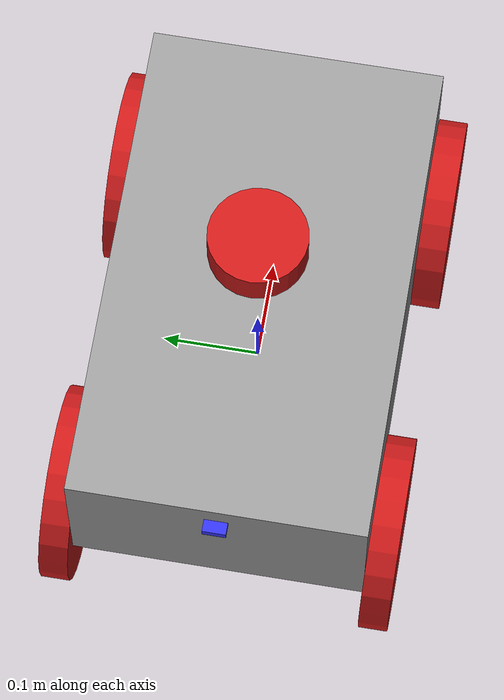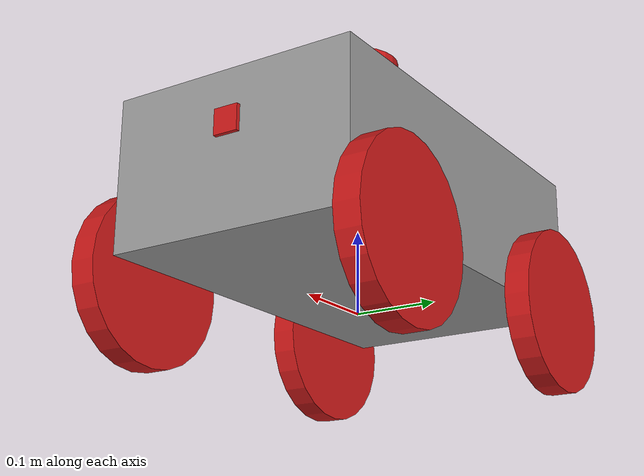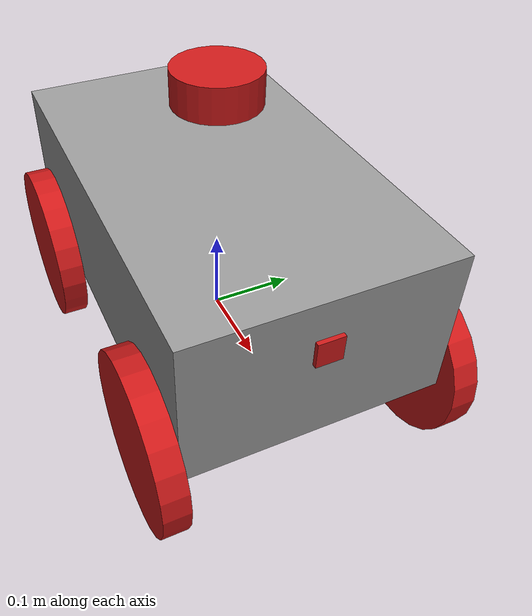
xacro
<robot xmlns:xacro="http://www.ros.org/wiki/xacro"  name="robot">

    <xacro:include filename="rover_core.xacro" />

    <xacro:include filename="ros2_control.xacro" />

    <xacro:include filename="depth_camera.xacro" />

    <xacro:include filename="lidar_2d.xacro" />

    <xacro:include filename="back_camera.xacro" />

    <xacro:include filename="imu.xacro"/>

    <xacro:imu_sensor parent_link="base_link"/>

</robot>

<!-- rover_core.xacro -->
<robot xmlns:xacro="http://www.ros.org/wiki/xacro" name="basic_rover">

  <xacro:include filename="inertial_macros.xacro"/>

  <!-- Materials -->
  <material name="gray"><color rgba="0.6 0.6 0.6 1.0"/></material>
  <material name="black"><color rgba="0.05 0.05 0.05 1.0"/></material>
  <material name="red"><color rgba="0.8 0.1 0.1 1.0"/></material>
  <material name="blue"><color rgba="0.2 0.2 1.0 1.0"/></material>

  <!-- Dimensions (easy to tweak) -->
  <xacro:property name="base_x" value="0.50"/>
  <xacro:property name="base_y" value="0.30"/>
  <xacro:property name="base_z" value="0.18"/>
  <xacro:property name="base_z_origin" value="0.12"/>

  <xacro:property name="wheel_r" value="0.10"/>
  <xacro:property name="wheel_w" value="0.03"/>

  <!-- Wheel placement (relative to base_link origin) -->
  <xacro:property name="wheel_x_front" value="0.18"/>
  <xacro:property name="wheel_x_rear"  value="-0.18"/>
  <xacro:property name="wheel_y" value="${base_y/2 + wheel_w/2}"/>

  <!-- Put wheel centers slightly below base collision bottom (base bottom is z=0.0) -->
  <xacro:property name="wheel_z" value="0.02"/>

  <!-- BASE LINK (chassis) -->
  <link name="base_link">
    <visual>
      <origin xyz="0 0 ${base_z_origin}" rpy="0 0 0"/>
      <geometry>
        <box size="${base_x} ${base_y} ${base_z}"/>
      </geometry>
      <material name="gray"/>
    </visual>

    <collision>
      <origin xyz="0 0 ${base_z_origin}" rpy="0 0 0"/>
      <geometry>
        <box size="${base_x} ${base_y} ${base_z}"/>
      </geometry>
    </collision>

    <!-- Use your macro for inertia -->
    <xacro:inertial_box mass="10.0" x="${base_x}" y="${base_y}" z="${base_z}">
      <origin xyz="0 0 ${base_z/2}" rpy="0 0 0"/>
    </xacro:inertial_box>
  </link>

  <gazebo reference="base_link">
    <material>Gazebo/Grey</material>
  </gazebo>

    <!-- BASE FOOTPRINT (ground-projected base frame for SLAM/Nav2) -->
  <joint name="base_footprint_joint" type="fixed">
    <parent link="base_link"/>
    <child link="base_footprint"/>
    <origin xyz="0 0 0" rpy="0 0 0 "/>
  </joint>

  <link name="base_footprint">
  </link>

  <!-- Helper macro for a wheel -->
  <xacro:macro name="wheel_link" params="name">
    <link name="${name}">
      <visual>
        <!-- Rotate cylinder so it spins about Y (axle along Y) -->
        <origin xyz="0 0 0" rpy="${pi/2} 0 0"/>
        <geometry>
          <cylinder radius="${wheel_r}" length="${wheel_w}"/>
        </geometry>
        <material name="red"/>
      </visual>

      <collision>
        <origin xyz="0 0 0" rpy="${pi/2} 0 0"/>
        <geometry>
          <cylinder radius="${wheel_r}" length="${wheel_w}"/>
        </geometry>
      </collision>

      <xacro:inertial_cylinder mass="0.5" length="${wheel_w}" radius="${wheel_r}">
        <origin xyz="0 0 0" rpy="0 0 0"/>
      </xacro:inertial_cylinder>
    </link>

    <gazebo reference="${name}">
      <material>Gazebo/Red</material>
    </gazebo>
  </xacro:macro>

  <!-- Create 4 wheels -->
  <xacro:wheel_link name="front_left_wheel"/>
  <xacro:wheel_link name="front_right_wheel"/>
  <xacro:wheel_link name="rear_left_wheel"/>
  <xacro:wheel_link name="rear_right_wheel"/>

  <!-- Joints -->
  <!-- NOTE: Axis set to Y so wheel rotates correctly with the visual rotation above -->
  <joint name="front_left_wheel_joint" type="continuous">
    <parent link="base_link"/>
    <child link="front_left_wheel"/>
    <origin xyz="${wheel_x_front} ${wheel_y} ${wheel_z}" rpy="0 0 0"/>
    <axis xyz="0 1 0"/>
  </joint>

  <joint name="front_right_wheel_joint" type="continuous">
    <parent link="base_link"/>
    <child link="front_right_wheel"/>
    <origin xyz="${wheel_x_front} -${wheel_y} ${wheel_z}" rpy="0 0 0"/>
    <axis xyz="0 1 0"/>
  </joint>

  <joint name="rear_left_wheel_joint" type="continuous">
    <parent link="base_link"/>
    <child link="rear_left_wheel"/>
    <origin xyz="${wheel_x_rear} ${wheel_y} ${wheel_z}" rpy="0 0 0"/>
    <axis xyz="0 1 0"/>
  </joint>

  <joint name="rear_right_wheel_joint" type="continuous">
    <parent link="base_link"/>
    <child link="rear_right_wheel"/>
    <origin xyz="${wheel_x_rear} -${wheel_y} ${wheel_z}" rpy="0 0 0"/>
    <axis xyz="0 1 0"/>
  </joint>

  <!-- Make REAR wheels (passive) very low friction so they don't fight the driven front wheels -->
  <gazebo reference="rear_left_wheel">
    <mu1 value="0.0001"/>
    <mu2 value="0.0001"/>
    <slip1 value="1.0"/>
    <slip2 value="1.0"/>
  </gazebo>

  <gazebo reference="rear_right_wheel">
    <mu1 value="0.0001"/>
    <mu2 value="0.0001"/>
    <slip1 value="1.0"/>
    <slip2 value="1.0"/>
  </gazebo>

</robot>

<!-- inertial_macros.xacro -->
<robot xmlns:xacro="http://www.ros.org/wiki/xacro" name="inertial_macros">

  <!-- Sphere inertia -->
  <xacro:macro name="inertial_sphere" params="mass radius *origin">
    <inertial>
      <xacro:insert_block name="origin"/>
      <mass value="${mass}" />
      <inertia
        ixx="${(2.0/5.0) * mass * (radius*radius)}" ixy="0.0" ixz="0.0"
        iyy="${(2.0/5.0) * mass * (radius*radius)}" iyz="0.0"
        izz="${(2.0/5.0) * mass * (radius*radius)}" />
    </inertial>
  </xacro:macro>

  <!-- Box inertia (about link frame axes) -->
  <xacro:macro name="inertial_box" params="mass x y z *origin">
    <inertial>
      <xacro:insert_block name="origin"/>
      <mass value="${mass}" />
      <inertia
        ixx="${(1.0/12.0) * mass * (y*y + z*z)}" ixy="0.0" ixz="0.0"
        iyy="${(1.0/12.0) * mass * (x*x + z*z)}" iyz="0.0"
        izz="${(1.0/12.0) * mass * (x*x + y*y)}" />
    </inertial>
  </xacro:macro>

  <!-- Cylinder inertia (assumes cylinder axis aligned with link Z axis) -->
  <xacro:macro name="inertial_cylinder" params="mass length radius *origin">
    <inertial>
      <xacro:insert_block name="origin"/>
      <mass value="${mass}" />
      <inertia
        ixx="${(1.0/12.0) * mass * (3*radius*radius + length*length)}" ixy="0.0" ixz="0.0"
        iyy="${(1.0/12.0) * mass * (3*radius*radius + length*length)}" iyz="0.0"
        izz="${(1.0/2.0) * mass * (radius*radius)}" />
    </inertial>
  </xacro:macro>

  <xacro:macro name="inertial_cylinder_y" params="mass length radius *origin">
    <inertial>
      <xacro:insert_block name="origin"/>
      <mass value="${mass}" />
      <!-- For a cylinder, inertia about its axis is (1/2) m r^2.
           If axis is Y, then Iyy is the axial inertia. -->
      <inertia
        ixx="${(1.0/12.0) * mass * (3*radius*radius + length*length)}" ixy="0.0" ixz="0.0"
        iyy="${(1.0/2.0) * mass * (radius*radius)}" iyz="0.0"
        izz="${(1.0/12.0) * mass * (3*radius*radius + length*length)}" />
    </inertial>
  </xacro:macro>

</robot>

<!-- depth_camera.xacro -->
<robot xmlns:xacro="http://www.ros.org/wiki/xacro">

  <!-- Mount camera to rover -->
  <joint name="camera_joint" type="fixed">
    <parent link="base_link"/>
    <child link="camera_link"/>
    <!-- front-top-ish: adjust as needed -->
    <origin xyz="0.25 0 0.15" rpy="0 0 0"/>
  </joint>

  <link name="camera_link">
    <visual>
      <geometry>
        <box size="0.010 0.03 0.03"/>
      </geometry>
      <material name="red"/>
    </visual>

    <collision>
      <geometry>
        <box size="0.010 0.03 0.03"/>
      </geometry>
    </collision>

    <!-- small inertia so Gazebo is happy -->
    <inertial>
      <origin xyz="0 0 0" rpy="0 0 0"/>
      <mass value="0.05"/>
      <inertia ixx="1e-5" ixy="0" ixz="0" iyy="1e-5" iyz="0" izz="1e-5"/>
    </inertial>
  </link>

  <!-- Optical frame (REP-103/REP-105 style) -->
  <joint name="camera_optical_joint" type="fixed">
    <parent link="camera_link"/>
    <child link="camera_link_optical"/>
    <origin xyz="0 0 0" rpy="${-pi/2} 0 ${-pi/2}"/>
  </joint>

  <link name="camera_link_optical"/>

  <!-- Gazebo depth sensor -->
  <gazebo reference="camera_link">
    <material>Gazebo/Red</material>

    <sensor name="depth_camera" type="depth">
      <always_on>true</always_on>
      <visualize>true</visualize>
      <update_rate>10</update_rate>

      <camera>
        <horizontal_fov>1.089</horizontal_fov>
        <image>
          <format>B8G8R8</format>
          <width>640</width>
          <height>480</height>
        </image>
        <clip>
          <near>0.05</near>
          <far>8.0</far>
        </clip>
      </camera>

      <plugin name="depth_camera_controller" filename="libgazebo_ros_camera.so">
        <!-- frame published in CameraInfo -->
        <frame_name>camera_link_optical</frame_name>

        <!-- predictable topic names -->
        <camera_name>depth_camera</camera_name>
        <image_topic_name>rgb/image_raw</image_topic_name>
        <camera_info_topic_name>rgb/camera_info</camera_info_topic_name>

        <depth_image_topic_name>depth/image_raw</depth_image_topic_name>
        <depth_camera_info_topic_name>depth/camera_info</depth_camera_info_topic_name>
        <point_cloud_topic_name>depth/points</point_cloud_topic_name>
      </plugin>
    </sensor>
  </gazebo>

</robot>

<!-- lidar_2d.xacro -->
<robot xmlns:xacro="http://www.ros.org/wiki/xacro" >

    <joint name="laser_joint" type="fixed">
        <parent link="base_link"/>
        <child link="laser_frame"/>
        <origin xyz="0 0 0.3" rpy="0 0 0"/>
    </joint>

    <link name="laser_frame">
        <visual>
            <geometry>
                <cylinder radius="0.05" length="0.04"/>
            </geometry>
            <material name="red"/>
        </visual>
        <collision>
            <geometry>
                <cylinder radius="0.05" length="0.04"/>
            </geometry>
        </collision>
        <xacro:inertial_cylinder mass="0.1" length="0.04" radius="0.05">
            <origin xyz="0 0 0" rpy="0 0 0"/>
        </xacro:inertial_cylinder>
    </link>

    <gazebo reference="laser_frame">
        <material>Gazebo/Red</material>

        <sensor name="laser" type="ray">
            <pose> 0 0 0 0 0 0 </pose>
            <visualize>true</visualize>
            <update_rate>10</update_rate>
            <ray>
                <scan>
                    <horizontal>
                        <samples>360</samples>
                        <min_angle>-3.14</min_angle>
                        <max_angle>3.14</max_angle>
                    </horizontal>
                </scan>
                <range>
                    <min>0.3</min>
                    <max>12</max>
                </range>
            </ray>
            <plugin name="laser_controller" filename="libgazebo_ros_ray_sensor.so">
                <ros>
                    <argument>~/out:=scan</argument>
                </ros>
                <output_type>sensor_msgs/LaserScan</output_type>
                <frame_name>laser_frame</frame_name>
            </plugin>
        </sensor>
    </gazebo>

</robot>

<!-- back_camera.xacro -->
<robot xmlns:xacro="http://www.ros.org/wiki/xacro">

  <!-- IMX219 Camera Module 120 FOV - Back Camera -->
  <!-- This camera simulates the IMX219 sensor with wide angle lens -->

  <!-- Mount camera to rover -->
  <joint name="back_camera_joint" type="fixed">
    <parent link="base_link"/>
    <child link="back_camera_link"/>
    <!-- Position: back-center-top of rover, facing backward -->
    <origin xyz="-0.25 0 0.18" rpy="0 0 ${pi}"/>
  </joint>

  <!-- Camera link (physical body) -->
  <link name="back_camera_link">
    <visual>
      <geometry>
        <!-- IMX219 module is roughly 25mm x 24mm x 9mm -->
        <box size="0.025 0.024 0.009"/>
      </geometry>
      <material name="blue"/>
    </visual>

    <collision>
      <geometry>
        <box size="0.025 0.024 0.009"/>
      </geometry>
    </collision>

    <!-- Light inertia for small camera module -->
    <inertial>
      <origin xyz="0 0 0" rpy="0 0 0"/>
      <mass value="0.003"/>  <!-- ~3 grams -->
      <inertia ixx="1e-6" ixy="0" ixz="0" iyy="1e-6" iyz="0" izz="1e-6"/>
    </inertial>
  </link>

  <!-- Optical frame (REP-103/REP-105 convention) -->
  <!-- This transforms from camera_link to optical frame: -->
  <!-- X-right, Y-down, Z-forward (optical convention) -->
  <joint name="back_camera_optical_joint" type="fixed">
    <parent link="back_camera_link"/>
    <child link="back_camera_link_optical"/>
    <origin xyz="0 0 0" rpy="${-pi/2} 0 ${-pi/2}"/>
  </joint>

  <link name="back_camera_link_optical"/>

  <!-- Gazebo camera sensor plugin -->
  <gazebo reference="back_camera_link">
    <material>Gazebo/Blue</material>

    <sensor name="back_camera" type="camera">
      <always_on>true</always_on>
      <visualize>true</visualize>
      <update_rate>30</update_rate>  <!-- IMX219 can do up to 30 fps at full resolution -->

      <camera>
        <!-- 120 degrees horizontal FOV = 2.094 radians -->
        <horizontal_fov>2.0944</horizontal_fov>

        <image>
          <!-- IMX219 native resolution is 3280x2464, but using common operational resolution -->
          <format>R8G8B8</format>
          <width>1920</width>   <!-- 1080p resolution (common for robotics) -->
          <height>1080</height>
        </image>

        <clip>
          <near>0.02</near>  <!-- 2cm minimum distance -->
          <far>300</far>     <!-- 300m maximum distance (effectively infinite for this camera) -->
        </clip>

        <!-- Noise model for more realistic simulation -->
        <noise>
          <type>gaussian</type>
          <mean>0.0</mean>
          <stddev>0.007</stddev>  <!-- Small amount of noise -->
        </noise>
      </camera>

      <plugin name="back_camera_controller" filename="libgazebo_ros_camera.so">
        <!-- Frame name for TF and CameraInfo -->
        <frame_name>back_camera_link_optical</frame_name>

        <!-- ROS 2 remapping -->
        <ros>
          <namespace>/</namespace>
          <remapping>image_raw:=back_camera/image_raw</remapping>
          <remapping>camera_info:=back_camera/camera_info</remapping>
        </ros>

        <!-- Distortion parameters (can be adjusted for lens characteristics) -->
        <distortion_k1>0.0</distortion_k1>
        <distortion_k2>0.0</distortion_k2>
        <distortion_k3>0.0</distortion_k3>
        <distortion_t1>0.0</distortion_t1>
        <distortion_t2>0.0</distortion_t2>

        <!-- CameraInfo manager settings -->
        <hack_baseline>0.0</hack_baseline>
      </plugin>
    </sensor>
  </gazebo>

</robot>

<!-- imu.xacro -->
<robot xmlns:xacro="http://www.ros.org/wiki/xacro">

  <xacro:macro name="imu_sensor" params="parent_link">

    <!-- Small link to mount IMU -->
    <link name="imu_link">
      <inertial>
        <mass value="0.01"/>
        <inertia ixx="1e-6" iyy="1e-6" izz="1e-6"
                 ixy="0" ixz="0" iyz="0"/>
      </inertial>
    </link>

    <joint name="imu_joint" type="fixed">
      <parent link="${parent_link}"/>
      <child link="imu_link"/>
      <!-- Position on robot (tweak if needed) -->
      <origin xyz="0 0 0.15" rpy="0 0 0"/>
    </joint>

    <gazebo reference="imu_link">
      <sensor name="imu_sensor" type="imu">
        <always_on>true</always_on>
        <update_rate>50</update_rate>
        <visualize>false</visualize>

        <imu>
          <angular_velocity>
            <x>
              <noise type="gaussian">
                <mean>0.0</mean>
                <stddev>0.0002</stddev>
              </noise>
            </x>
            <y>
              <noise type="gaussian">
                <mean>0.0</mean>
                <stddev>0.0002</stddev>
              </noise>
            </y>
            <z>
              <noise type="gaussian">
                <mean>0.0</mean>
                <stddev>0.0002</stddev>
              </noise>
            </z>
          </angular_velocity>
        </imu>

        <plugin name="imu_plugin" filename="libgazebo_ros_imu_sensor.so">
          <ros>
            <remapping>~/out:=/imu/data</remapping>
          </ros>
          <frame_name>imu_link</frame_name>
        </plugin>

      </sensor>
    </gazebo>

  </xacro:macro>

</robot>
